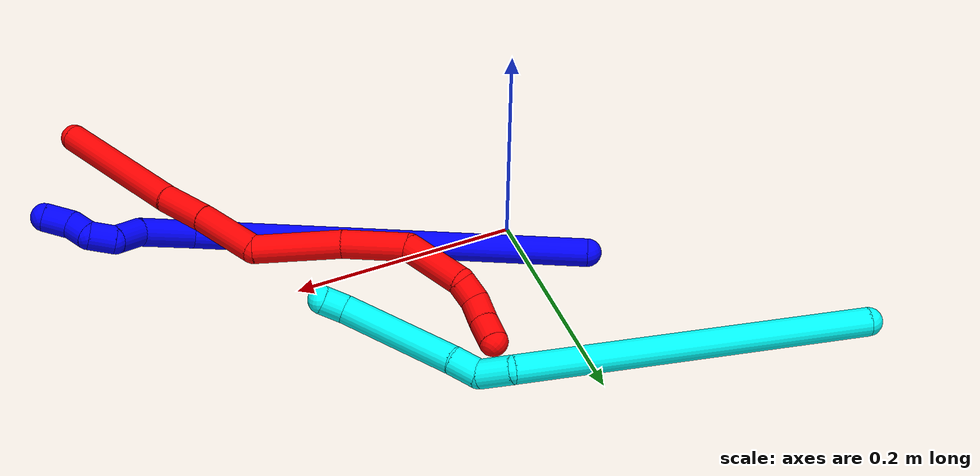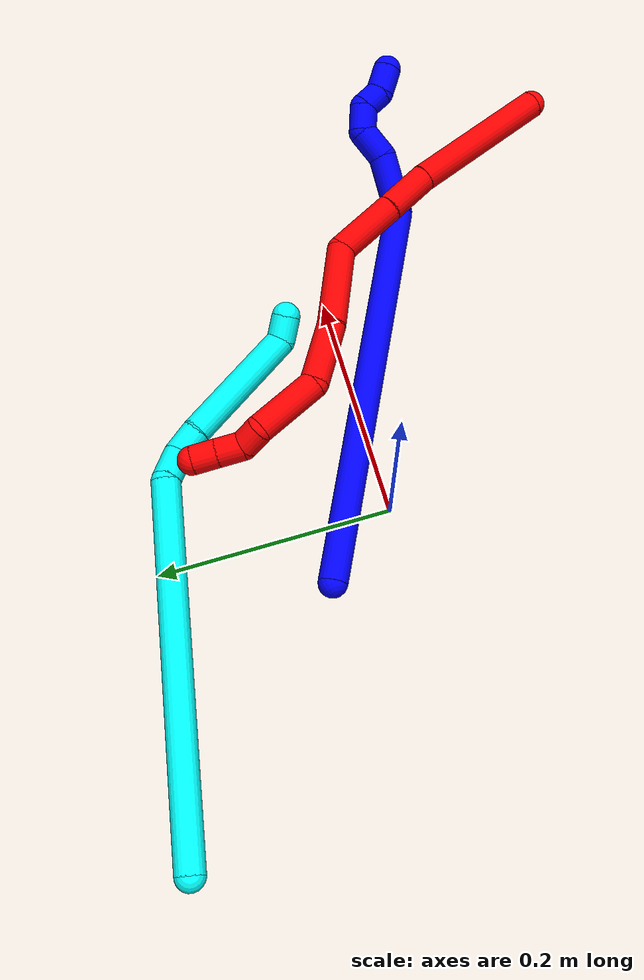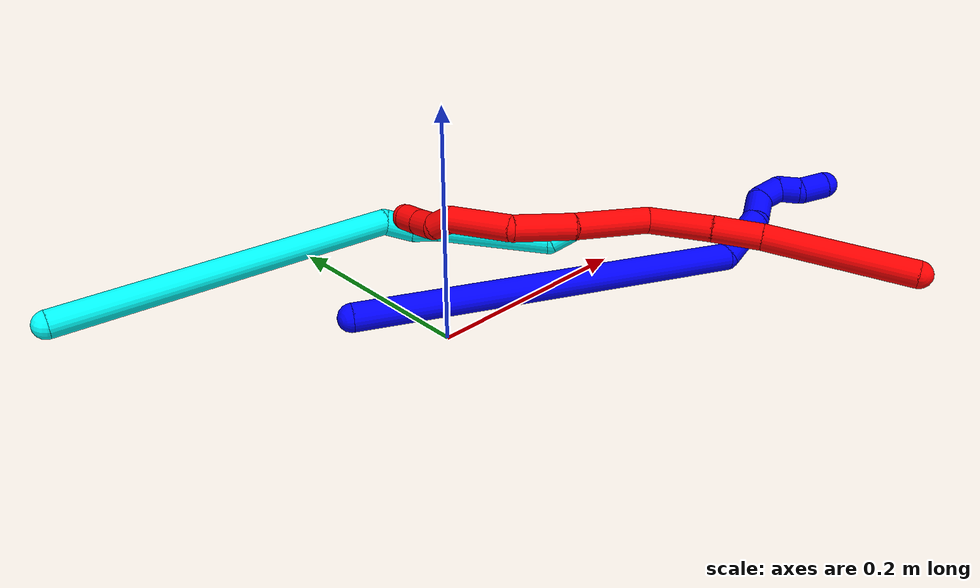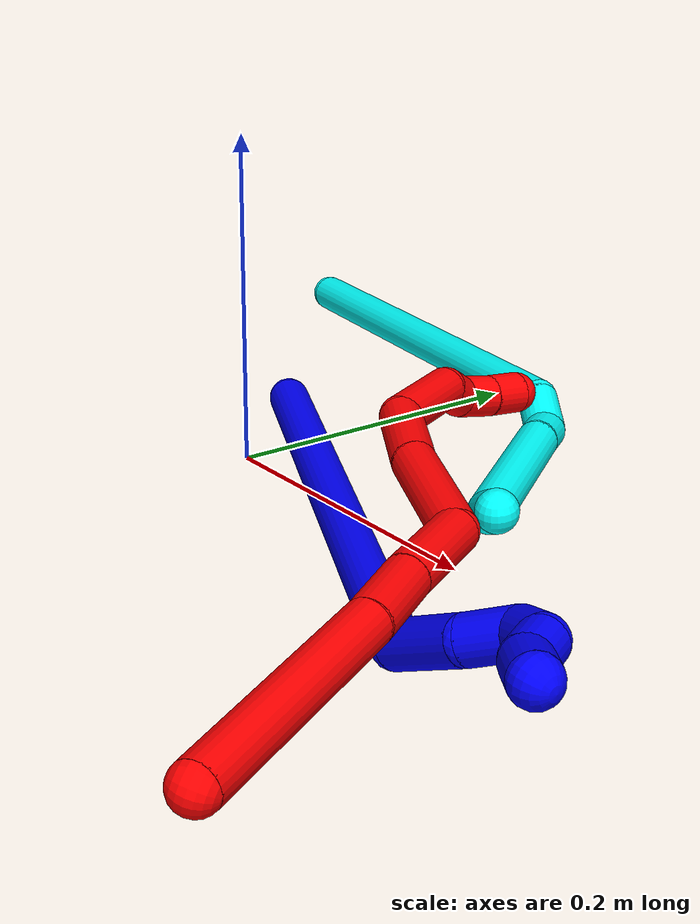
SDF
<sdf version="1.7">
 <world name="default">
  <plugin name="TubeGeneratorPlugin" filename="libtube_generator_plugin.so"/>
  <model name="photoneo_s_sensor">
   <static>1</static>
   <pose>0 0 2 1.57079 1.57079 3.14159</pose>
   <link name="link">
    <inertial><mass>0.1</mass></inertial>
    <sensor name="sensor" type="depth">
     <update_rate>30</update_rate>
     <camera>
      <horizontal_fov>1.22</horizontal_fov>
      <image><width>1920</width><height>1200</height><format>B8G8R8</format></image>
      <clip><near>0.1</near><far>4</far></clip>
      <depth_camera><output>points</output></depth_camera>
     </camera>
     <plugin name="camera_plugin" filename="libgazebo_ros_depth_camera.so">
      <baseline>0.2</baseline>
      <alwaysOn>1</alwaysOn>
      <updateRate>0.0</updateRate>
      <cameraName>camera_ir</cameraName>
      <imageTopicName>/camera/color/image_raw</imageTopicName>
      <cameraInfoTopicName>/camera/color/camera_info</cameraInfoTopicName>
      <depthImageTopicName>/camera/depth/image_raw</depthImageTopicName>
      <depthImageCameraInfoTopicName>/camera/depth/camera_info</depthImageCameraInfoTopicName>
      <pointCloudTopicName>/camera/depth/points</pointCloudTopicName>
      <frameName>fr_optical</frameName>
      <pointCloudCutoff>0.1</pointCloudCutoff>
      <pointCloudCutoffMax>2.0</pointCloudCutoffMax>
      <distortionK1>0</distortionK1>
      <distortionK2>0</distortionK2>
      <distortionK3>0</distortionK3>
      <distortionT1>0</distortionT1>
      <distortionT2>0</distortionT2>
      <CxPrime>0</CxPrime>
      <Cx>0</Cx>
      <Cy>0</Cy>
      <focalLength>0</focalLength>
      <hackBaseline>0</hackBaseline>
     </plugin>
    </sensor>
   </link>
  </model>
  <gravity>0 0 -9.8</gravity>
  <magnetic_field>6e-06 2.3e-05 -4.2e-05</magnetic_field>
  <atmosphere type="adiabatic"/>
  <physics name="default_physics" default="0" type="ode">
   <max_step_size>0.003</max_step_size>
   <real_time_factor>1</real_time_factor>
   <real_time_update_rate>1000</real_time_update_rate>
   <max_contacts>10000</max_contacts>
   <ode>
    <solver>
     <type>quick</type>
     <iters>100</iters>
     <sor>1.3</sor>
     <use_dynamic_moi_rescaling>0</use_dynamic_moi_rescaling>
    </solver>
    <constraints>
     <contact_max_correcting_vel>0</contact_max_correcting_vel>
     <contact_surface_layer>0.001</contact_surface_layer>
     <cfm>0</cfm>
     <erp>0.2</erp>
    </constraints>
   </ode>
  </physics>
  <scene><ambient>0.4 0.4 0.4 1</ambient><background>0.7 0.7 0.7 1</background><shadows>0</shadows></scene>
  <audio><device>default</device></audio>
  <spherical_coordinates>
   <surface_model>EARTH_WGS84</surface_model>
   <latitude_deg>0</latitude_deg>
   <longitude_deg>0</longitude_deg>
   <elevation>0</elevation>
   <heading_deg>0</heading_deg>
  </spherical_coordinates>
  <model name="bin">
   <static>1</static>
   <link name="bottom">
    <collision name="collision-bottom">
     <pose>0 0 -0.01 0 -0 0</pose>
     <geometry><box><size>0.8 0.6 0.02</size></box></geometry>
     <surface>
      <friction><ode><mu>100</mu><mu2>100</mu2></ode></friction>
      <contact><collide_bitmask>65535</collide_bitmask></contact>
     </surface>
    </collision>
   </link>
   <link name="west_wall">
    <collision name="collision-west_wall">
     <pose>-0.41 0 0.1 0 -0 0</pose>
     <geometry><box><size>0.02 0.6 0.2</size></box></geometry>
     <surface>
      <friction><ode><mu>100</mu><mu2>100</mu2></ode></friction>
      <contact><collide_bitmask>65535</collide_bitmask></contact>
     </surface>
    </collision>
   </link>
   <link name="east_wall">
    <collision name="collision-east_wall">
     <pose>0.41 0 0.1 0 -0 0</pose>
     <geometry><box><size>0.02 0.6 0.2</size></box></geometry>
     <surface>
      <friction><ode><mu>100</mu><mu2>100</mu2></ode></friction>
      <contact><collide_bitmask>65535</collide_bitmask></contact>
     </surface>
    </collision>
   </link>
   <link name="south_wall">
    <collision name="collision-south_wall">
     <pose>0 -0.31 0.1 0 -0 0</pose>
     <geometry><box><size>0.8 0.02 0.2</size></box></geometry>
     <surface>
      <friction><ode><mu>100</mu><mu2>100</mu2></ode></friction>
      <contact><collide_bitmask>65535</collide_bitmask></contact>
     </surface>
    </collision>
   </link>
   <link name="north_wall">
    <collision name="collision-north_wall">
     <pose>0 0.31 0.1 0 -0 0</pose>
     <geometry><box><size>0.8 0.02 0.2</size></box></geometry>
     <surface>
      <friction><ode><mu>100</mu><mu2>100</mu2></ode></friction>
      <contact><collide_bitmask>65535</collide_bitmask></contact>
     </surface>
    </collision>
   </link>
  </model>
  <model name="1">
   <static>0</static>
   <link name="1">
    <collision name="collision-cylinder-e_1_1_4">
     <pose>0.081359 -0.002686 0.155457 0.017279 0.482094 0.004248</pose>
     <geometry><cylinder><radius>0.0125</radius><length>0.35096</length></cylinder></geometry>
     <surface>
      <friction><ode><mu>1.16</mu><mu2>1.16</mu2><slip1>0</slip1><slip2>0</slip2></ode></friction>
      <contact><ode><kp>1e+06</kp><kd>1</kd><max_vel>0</max_vel><min_depth>0.001</min_depth></ode></contact>
     </surface>
    </collision>
    <visual name="visual-cylinder-e_1_1_4">
     <pose>0.081359 -0.002686 0.155457 0.017279 0.482094 0.004248</pose>
     <geometry><cylinder><radius>0.0125</radius><length>0.35096</length></cylinder></geometry>
     <material><ambient>0 0 1 1</ambient></material>
    </visual>
    <collision name="collision-cylinder-e_2_4_5">
     <pose>0.164364 -0.018341 0.333763 0.516209 0.062579 0.016525</pose>
     <geometry><cylinder><radius>0.0125</radius><length>0.052648</length></cylinder></geometry>
     <surface>
      <friction><ode><mu>1.16</mu><mu2>1.16</mu2><slip1>0</slip1><slip2>0</slip2></ode></friction>
      <contact><ode><kp>1e+06</kp><kd>1</kd><max_vel>0</max_vel><min_depth>0.001</min_depth></ode></contact>
     </surface>
    </collision>
    <visual name="visual-cylinder-e_2_4_5">
     <pose>0.164364 -0.018341 0.333763 0.516209 0.062579 0.016525</pose>
     <geometry><cylinder><radius>0.0125</radius><length>0.052648</length></cylinder></geometry>
     <material><ambient>0 0 1 1</ambient></material>
    </visual>
    <collision name="collision-cylinder-e_3_5_6">
     <pose>0.161224 -0.038071 0.368006 0.535637 -0.346643 -0.096013</pose>
     <geometry><cylinder><radius>0.0125</radius><length>0.028177</length></cylinder></geometry>
     <surface>
      <friction><ode><mu>1.16</mu><mu2>1.16</mu2><slip1>0</slip1><slip2>0</slip2></ode></friction>
      <contact><ode><kp>1e+06</kp><kd>1</kd><max_vel>0</max_vel><min_depth>0.001</min_depth></ode></contact>
     </surface>
    </collision>
    <visual name="visual-cylinder-e_3_5_6">
     <pose>0.161224 -0.038071 0.368006 0.535637 -0.346643 -0.096013</pose>
     <geometry><cylinder><radius>0.0125</radius><length>0.028177</length></cylinder></geometry>
     <material><ambient>0 0 1 1</ambient></material>
    </visual>
    <collision name="collision-cylinder-e_4_6_7">
     <pose>0.16079 -0.048603 0.38952 0.356579 0.383185 0.06988</pose>
     <geometry><cylinder><radius>0.0125</radius><length>0.023285</length></cylinder></geometry>
     <surface>
      <friction><ode><mu>1.16</mu><mu2>1.16</mu2><slip1>0</slip1><slip2>0</slip2></ode></friction>
      <contact><ode><kp>1e+06</kp><kd>1</kd><max_vel>0</max_vel><min_depth>0.001</min_depth></ode></contact>
     </surface>
    </collision>
    <visual name="visual-cylinder-e_4_6_7">
     <pose>0.16079 -0.048603 0.38952 0.356579 0.383185 0.06988</pose>
     <geometry><cylinder><radius>0.0125</radius><length>0.023285</length></cylinder></geometry>
     <material><ambient>0 0 1 1</ambient></material>
    </visual>
    <collision name="collision-cylinder-e_5_7_8">
     <pose>0.174166 -0.051803 0.40437 -0.119889 1.08495 -0.072325</pose>
     <geometry><cylinder><radius>0.0125</radius><length>0.020408</length></cylinder></geometry>
     <surface>
      <friction><ode><mu>1.16</mu><mu2>1.16</mu2><slip1>0</slip1><slip2>0</slip2></ode></friction>
      <contact><ode><kp>1e+06</kp><kd>1</kd><max_vel>0</max_vel><min_depth>0.001</min_depth></ode></contact>
     </surface>
    </collision>
    <visual name="visual-cylinder-e_5_7_8">
     <pose>0.174166 -0.051803 0.40437 -0.119889 1.08495 -0.072325</pose>
     <geometry><cylinder><radius>0.0125</radius><length>0.020408</length></cylinder></geometry>
     <material><ambient>0 0 1 1</ambient></material>
    </visual>
    <collision name="collision-cylinder-e_6_8_2">
     <pose>0.190412 -0.053301 0.41879 0.210263 0.6299 0.068729</pose>
     <geometry><cylinder><radius>0.0125</radius><length>0.024521</length></cylinder></geometry>
     <surface>
      <friction><ode><mu>1.16</mu><mu2>1.16</mu2><slip1>0</slip1><slip2>0</slip2></ode></friction>
      <contact><ode><kp>1e+06</kp><kd>1</kd><max_vel>0</max_vel><min_depth>0.001</min_depth></ode></contact>
     </surface>
    </collision>
    <visual name="visual-cylinder-e_6_8_2">
     <pose>0.190412 -0.053301 0.41879 0.210263 0.6299 0.068729</pose>
     <geometry><cylinder><radius>0.0125</radius><length>0.024521</length></cylinder></geometry>
     <material><ambient>0 0 1 1</ambient></material>
    </visual>
    <collision name="collision-sphere-2">
     <pose>0.197634 -0.055369 0.428479 0 -0 0</pose>
     <geometry><sphere><radius>0.0125</radius></sphere></geometry>
     <surface>
      <friction><ode><mu>1.16</mu><mu2>1.16</mu2><slip1>0</slip1><slip2>0</slip2></ode></friction>
      <contact><ode><kp>1e+06</kp><kd>1</kd><max_vel>0</max_vel><min_depth>0.001</min_depth></ode></contact>
     </surface>
    </collision>
    <visual name="visual-sphere-2">
     <pose>0.197634 -0.055369 0.428479 0 -0 0</pose>
     <geometry><sphere><radius>0.0125</radius></sphere></geometry>
     <material><ambient>0 0 1 1</ambient></material>
    </visual>
    <collision name="collision-sphere-4">
     <pose>0.162718 -0.005373 0.310914 0 -0 0</pose>
     <geometry><sphere><radius>0.0125</radius></sphere></geometry>
     <surface>
      <friction><ode><mu>1.16</mu><mu2>1.16</mu2><slip1>0</slip1><slip2>0</slip2></ode></friction>
      <contact><ode><kp>1e+06</kp><kd>1</kd><max_vel>0</max_vel><min_depth>0.001</min_depth></ode></contact>
     </surface>
    </collision>
    <visual name="visual-sphere-4">
     <pose>0.162718 -0.005373 0.310914 0 -0 0</pose>
     <geometry><sphere><radius>0.0125</radius></sphere></geometry>
     <material><ambient>0 0 1 1</ambient></material>
    </visual>
    <collision name="collision-sphere-1">
     <geometry><sphere><radius>0.0125</radius></sphere></geometry>
     <surface>
      <friction><ode><mu>1.16</mu><mu2>1.16</mu2><slip1>0</slip1><slip2>0</slip2></ode></friction>
      <contact><ode><kp>1e+06</kp><kd>1</kd><max_vel>0</max_vel><min_depth>0.001</min_depth></ode></contact>
     </surface>
    </collision>
    <visual name="visual-sphere-1">
     <geometry><sphere><radius>0.0125</radius></sphere></geometry>
     <material><ambient>0 0 1 1</ambient></material>
    </visual>
    <collision name="collision-sphere-8">
     <pose>0.18319 -0.051233 0.4091 0 -0 0</pose>
     <geometry><sphere><radius>0.0125</radius></sphere></geometry>
     <surface>
      <friction><ode><mu>1.16</mu><mu2>1.16</mu2><slip1>0</slip1><slip2>0</slip2></ode></friction>
      <contact><ode><kp>1e+06</kp><kd>1</kd><max_vel>0</max_vel><min_depth>0.001</min_depth></ode></contact>
     </surface>
    </collision>
    <visual name="visual-sphere-8">
     <pose>0.18319 -0.051233 0.4091 0 -0 0</pose>
     <geometry><sphere><radius>0.0125</radius></sphere></geometry>
     <material><ambient>0 0 1 1</ambient></material>
    </visual>
    <collision name="collision-sphere-5">
     <pose>0.16601 -0.031308 0.356612 0 -0 0</pose>
     <geometry><sphere><radius>0.0125</radius></sphere></geometry>
     <surface>
      <friction><ode><mu>1.16</mu><mu2>1.16</mu2><slip1>0</slip1><slip2>0</slip2></ode></friction>
      <contact><ode><kp>1e+06</kp><kd>1</kd><max_vel>0</max_vel><min_depth>0.001</min_depth></ode></contact>
     </surface>
    </collision>
    <visual name="visual-sphere-5">
     <pose>0.16601 -0.031308 0.356612 0 -0 0</pose>
     <geometry><sphere><radius>0.0125</radius></sphere></geometry>
     <material><ambient>0 0 1 1</ambient></material>
    </visual>
    <collision name="collision-sphere-6">
     <pose>0.156437 -0.044834 0.379401 0 -0 0</pose>
     <geometry><sphere><radius>0.0125</radius></sphere></geometry>
     <surface>
      <friction><ode><mu>1.16</mu><mu2>1.16</mu2><slip1>0</slip1><slip2>0</slip2></ode></friction>
      <contact><ode><kp>1e+06</kp><kd>1</kd><max_vel>0</max_vel><min_depth>0.001</min_depth></ode></contact>
     </surface>
    </collision>
    <visual name="visual-sphere-6">
     <pose>0.156437 -0.044834 0.379401 0 -0 0</pose>
     <geometry><sphere><radius>0.0125</radius></sphere></geometry>
     <material><ambient>0 0 1 1</ambient></material>
    </visual>
    <collision name="collision-sphere-7">
     <pose>0.165143 -0.052373 0.399639 0 -0 0</pose>
     <geometry><sphere><radius>0.0125</radius></sphere></geometry>
     <surface>
      <friction><ode><mu>1.16</mu><mu2>1.16</mu2><slip1>0</slip1><slip2>0</slip2></ode></friction>
      <contact><ode><kp>1e+06</kp><kd>1</kd><max_vel>0</max_vel><min_depth>0.001</min_depth></ode></contact>
     </surface>
    </collision>
    <visual name="visual-sphere-7">
     <pose>0.165143 -0.052373 0.399639 0 -0 0</pose>
     <geometry><sphere><radius>0.0125</radius></sphere></geometry>
     <material><ambient>0 0 1 1</ambient></material>
    </visual>
    <inertial>
     <pose>0.107435 -0.012954 0.220184 0 -0 0</pose>
     <mass>0.5</mass>
     <inertia>
      <ixx>0.003254</ixx>
      <ixy>0</ixy>
      <ixz>0</ixz>
      <iyy>0.003646</iyy>
      <iyz>0</iyz>
      <izz>-0.001582</izz>
     </inertia>
    </inertial>
   </link>
   <pose>-0.048758 0.064377 0.01179 -1.65928 -0.13746 -1.54101</pose>
  </model>
  <model name="2">
   <static>0</static>
   <link name="2">
    <collision name="collision-cylinder-e_1_1_4">
     <pose>-0.021078 0.062975 0.012309 -1.37777 -0.317379 0.262057</pose>
     <geometry><cylinder><radius>0.0125</radius><length>0.13508</length></cylinder></geometry>
     <surface>
      <friction><ode><mu>1.16</mu><mu2>1.16</mu2><slip1>0</slip1><slip2>0</slip2></ode></friction>
      <contact><ode><kp>1e+06</kp><kd>1</kd><max_vel>0</max_vel><min_depth>0.001</min_depth></ode></contact>
     </surface>
    </collision>
    <visual name="visual-cylinder-e_1_1_4">
     <pose>-0.021078 0.062975 0.012309 -1.37777 -0.317379 0.262057</pose>
     <geometry><cylinder><radius>0.0125</radius><length>0.13508</length></cylinder></geometry>
     <material><ambient>1 0 0 1</ambient></material>
    </visual>
    <collision name="collision-cylinder-e_2_4_5">
     <pose>-0.047967 0.147494 0.026544 -1.48162 -0.262474 0.240277</pose>
     <geometry><cylinder><radius>0.0125</radius><length>0.044793</length></cylinder></geometry>
     <surface>
      <friction><ode><mu>1.16</mu><mu2>1.16</mu2><slip1>0</slip1><slip2>0</slip2></ode></friction>
      <contact><ode><kp>1e+06</kp><kd>1</kd><max_vel>0</max_vel><min_depth>0.001</min_depth></ode></contact>
     </surface>
    </collision>
    <visual name="visual-cylinder-e_2_4_5">
     <pose>-0.047967 0.147494 0.026544 -1.48162 -0.262474 0.240277</pose>
     <geometry><cylinder><radius>0.0125</radius><length>0.044793</length></cylinder></geometry>
     <material><ambient>1 0 0 1</ambient></material>
    </visual>
    <collision name="collision-cylinder-e_3_5_6">
     <pose>-0.060366 0.198085 0.032411 -1.43594 -0.221075 0.193291</pose>
     <geometry><cylinder><radius>0.0125</radius><length>0.060089</length></cylinder></geometry>
     <surface>
      <friction><ode><mu>1.16</mu><mu2>1.16</mu2><slip1>0</slip1><slip2>0</slip2></ode></friction>
      <contact><ode><kp>1e+06</kp><kd>1</kd><max_vel>0</max_vel><min_depth>0.001</min_depth></ode></contact>
     </surface>
    </collision>
    <visual name="visual-cylinder-e_3_5_6">
     <pose>-0.060366 0.198085 0.032411 -1.43594 -0.221075 0.193291</pose>
     <geometry><cylinder><radius>0.0125</radius><length>0.060089</length></cylinder></geometry>
     <material><ambient>1 0 0 1</ambient></material>
    </visual>
    <collision name="collision-cylinder-e_4_6_7">
     <pose>-0.071425 0.259841 0.016043 -2.12646 -0.115598 0.207333</pose>
     <geometry><cylinder><radius>0.0125</radius><length>0.07752</length></cylinder></geometry>
     <surface>
      <friction><ode><mu>1.16</mu><mu2>1.16</mu2><slip1>0</slip1><slip2>0</slip2></ode></friction>
      <contact><ode><kp>1e+06</kp><kd>1</kd><max_vel>0</max_vel><min_depth>0.001</min_depth></ode></contact>
     </surface>
    </collision>
    <visual name="visual-cylinder-e_4_6_7">
     <pose>-0.071425 0.259841 0.016043 -2.12646 -0.115598 0.207333</pose>
     <geometry><cylinder><radius>0.0125</radius><length>0.07752</length></cylinder></geometry>
     <material><ambient>1 0 0 1</ambient></material>
    </visual>
    <collision name="collision-cylinder-e_5_7_8">
     <pose>-0.080205 0.318883 -0.016028 -1.99082 -0.148347 0.228146</pose>
     <geometry><cylinder><radius>0.0125</radius><length>0.058321</length></cylinder></geometry>
     <surface>
      <friction><ode><mu>1.16</mu><mu2>1.16</mu2><slip1>0</slip1><slip2>0</slip2></ode></friction>
      <contact><ode><kp>1e+06</kp><kd>1</kd><max_vel>0</max_vel><min_depth>0.001</min_depth></ode></contact>
     </surface>
    </collision>
    <visual name="visual-cylinder-e_5_7_8">
     <pose>-0.080205 0.318883 -0.016028 -1.99082 -0.148347 0.228146</pose>
     <geometry><cylinder><radius>0.0125</radius><length>0.058321</length></cylinder></geometry>
     <material><ambient>1 0 0 1</ambient></material>
    </visual>
    <collision name="collision-cylinder-e_6_8_9">
     <pose>-0.090932 0.373764 -0.022551 -1.38934 -0.21758 0.18151</pose>
     <geometry><cylinder><radius>0.0125</radius><length>0.05945</length></cylinder></geometry>
     <surface>
      <friction><ode><mu>1.16</mu><mu2>1.16</mu2><slip1>0</slip1><slip2>0</slip2></ode></friction>
      <contact><ode><kp>1e+06</kp><kd>1</kd><max_vel>0</max_vel><min_depth>0.001</min_depth></ode></contact>
     </surface>
    </collision>
    <visual name="visual-cylinder-e_6_8_9">
     <pose>-0.090932 0.373764 -0.022551 -1.38934 -0.21758 0.18151</pose>
     <geometry><cylinder><radius>0.0125</radius><length>0.05945</length></cylinder></geometry>
     <material><ambient>1 0 0 1</ambient></material>
    </visual>
    <collision name="collision-cylinder-e_7_9_10">
     <pose>-0.094309 0.411306 -0.013926 -1.21063 0.30636 -0.212859</pose>
     <geometry><cylinder><radius>0.0125</radius><length>0.02016</length></cylinder></geometry>
     <surface>
      <friction><ode><mu>1.16</mu><mu2>1.16</mu2><slip1>0</slip1><slip2>0</slip2></ode></friction>
      <contact><ode><kp>1e+06</kp><kd>1</kd><max_vel>0</max_vel><min_depth>0.001</min_depth></ode></contact>
     </surface>
    </collision>
    <visual name="visual-cylinder-e_7_9_10">
     <pose>-0.094309 0.411306 -0.013926 -1.21063 0.30636 -0.212859</pose>
     <geometry><cylinder><radius>0.0125</radius><length>0.02016</length></cylinder></geometry>
     <material><ambient>1 0 0 1</ambient></material>
    </visual>
    <collision name="collision-cylinder-e_8_10_11">
     <pose>-0.092868 0.428909 -0.003209 -0.865494 -0.140546 0.065009</pose>
     <geometry><cylinder><radius>0.0125</radius><length>0.022837</length></cylinder></geometry>
     <surface>
      <friction><ode><mu>1.16</mu><mu2>1.16</mu2><slip1>0</slip1><slip2>0</slip2></ode></friction>
      <contact><ode><kp>1e+06</kp><kd>1</kd><max_vel>0</max_vel><min_depth>0.001</min_depth></ode></contact>
     </surface>
    </collision>
    <visual name="visual-cylinder-e_8_10_11">
     <pose>-0.092868 0.428909 -0.003209 -0.865494 -0.140546 0.065009</pose>
     <geometry><cylinder><radius>0.0125</radius><length>0.022837</length></cylinder></geometry>
     <material><ambient>1 0 0 1</ambient></material>
    </visual>
    <collision name="collision-cylinder-e_9_11_2">
     <pose>-0.096757 0.445871 0.010696 -0.903885 -0.212081 0.103251</pose>
     <geometry><cylinder><radius>0.0125</radius><length>0.021748</length></cylinder></geometry>
     <surface>
      <friction><ode><mu>1.16</mu><mu2>1.16</mu2><slip1>0</slip1><slip2>0</slip2></ode></friction>
      <contact><ode><kp>1e+06</kp><kd>1</kd><max_vel>0</max_vel><min_depth>0.001</min_depth></ode></contact>
     </surface>
    </collision>
    <visual name="visual-cylinder-e_9_11_2">
     <pose>-0.096757 0.445871 0.010696 -0.903885 -0.212081 0.103251</pose>
     <geometry><cylinder><radius>0.0125</radius><length>0.021748</length></cylinder></geometry>
     <material><ambient>1 0 0 1</ambient></material>
    </visual>
    <collision name="collision-sphere-2">
     <pose>-0.099046 0.454223 0.017271 0 -0 0</pose>
     <geometry><sphere><radius>0.0125</radius></sphere></geometry>
     <surface>
      <friction><ode><mu>1.16</mu><mu2>1.16</mu2><slip1>0</slip1><slip2>0</slip2></ode></friction>
      <contact><ode><kp>1e+06</kp><kd>1</kd><max_vel>0</max_vel><min_depth>0.001</min_depth></ode></contact>
     </surface>
    </collision>
    <visual name="visual-sphere-2">
     <pose>-0.099046 0.454223 0.017271 0 -0 0</pose>
     <geometry><sphere><radius>0.0125</radius></sphere></geometry>
     <material><ambient>1 0 0 1</ambient></material>
    </visual>
    <collision name="collision-sphere-11">
     <pose>-0.094468 0.437518 0.00412 0 -0 0</pose>
     <geometry><sphere><radius>0.0125</radius></sphere></geometry>
     <surface>
      <friction><ode><mu>1.16</mu><mu2>1.16</mu2><slip1>0</slip1><slip2>0</slip2></ode></friction>
      <contact><ode><kp>1e+06</kp><kd>1</kd><max_vel>0</max_vel><min_depth>0.001</min_depth></ode></contact>
     </surface>
    </collision>
    <visual name="visual-sphere-11">
     <pose>-0.094468 0.437518 0.00412 0 -0 0</pose>
     <geometry><sphere><radius>0.0125</radius></sphere></geometry>
     <material><ambient>1 0 0 1</ambient></material>
    </visual>
    <collision name="collision-sphere-10">
     <pose>-0.091269 0.4203 -0.010539 0 -0 0</pose>
     <geometry><sphere><radius>0.0125</radius></sphere></geometry>
     <surface>
      <friction><ode><mu>1.16</mu><mu2>1.16</mu2><slip1>0</slip1><slip2>0</slip2></ode></friction>
      <contact><ode><kp>1e+06</kp><kd>1</kd><max_vel>0</max_vel><min_depth>0.001</min_depth></ode></contact>
     </surface>
    </collision>
    <visual name="visual-sphere-10">
     <pose>-0.091269 0.4203 -0.010539 0 -0 0</pose>
     <geometry><sphere><radius>0.0125</radius></sphere></geometry>
     <material><ambient>1 0 0 1</ambient></material>
    </visual>
    <collision name="collision-sphere-9">
     <pose>-0.097349 0.402312 -0.017313 0 -0 0</pose>
     <geometry><sphere><radius>0.0125</radius></sphere></geometry>
     <surface>
      <friction><ode><mu>1.16</mu><mu2>1.16</mu2><slip1>0</slip1><slip2>0</slip2></ode></friction>
      <contact><ode><kp>1e+06</kp><kd>1</kd><max_vel>0</max_vel><min_depth>0.001</min_depth></ode></contact>
     </surface>
    </collision>
    <visual name="visual-sphere-9">
     <pose>-0.097349 0.402312 -0.017313 0 -0 0</pose>
     <geometry><sphere><radius>0.0125</radius></sphere></geometry>
     <material><ambient>1 0 0 1</ambient></material>
    </visual>
    <collision name="collision-sphere-4">
     <pose>-0.042155 0.12595 0.024618 0 -0 0</pose>
     <geometry><sphere><radius>0.0125</radius></sphere></geometry>
     <surface>
      <friction><ode><mu>1.16</mu><mu2>1.16</mu2><slip1>0</slip1><slip2>0</slip2></ode></friction>
      <contact><ode><kp>1e+06</kp><kd>1</kd><max_vel>0</max_vel><min_depth>0.001</min_depth></ode></contact>
     </surface>
    </collision>
    <visual name="visual-sphere-4">
     <pose>-0.042155 0.12595 0.024618 0 -0 0</pose>
     <geometry><sphere><radius>0.0125</radius></sphere></geometry>
     <material><ambient>1 0 0 1</ambient></material>
    </visual>
    <collision name="collision-sphere-1">
     <geometry><sphere><radius>0.0125</radius></sphere></geometry>
     <surface>
      <friction><ode><mu>1.16</mu><mu2>1.16</mu2><slip1>0</slip1><slip2>0</slip2></ode></friction>
      <contact><ode><kp>1e+06</kp><kd>1</kd><max_vel>0</max_vel><min_depth>0.001</min_depth></ode></contact>
     </surface>
    </collision>
    <visual name="visual-sphere-1">
     <geometry><sphere><radius>0.0125</radius></sphere></geometry>
     <material><ambient>1 0 0 1</ambient></material>
    </visual>
    <collision name="collision-sphere-8">
     <pose>-0.084515 0.345217 -0.027788 0 -0 0</pose>
     <geometry><sphere><radius>0.0125</radius></sphere></geometry>
     <surface>
      <friction><ode><mu>1.16</mu><mu2>1.16</mu2><slip1>0</slip1><slip2>0</slip2></ode></friction>
      <contact><ode><kp>1e+06</kp><kd>1</kd><max_vel>0</max_vel><min_depth>0.001</min_depth></ode></contact>
     </surface>
    </collision>
    <visual name="visual-sphere-8">
     <pose>-0.084515 0.345217 -0.027788 0 -0 0</pose>
     <geometry><sphere><radius>0.0125</radius></sphere></geometry>
     <material><ambient>1 0 0 1</ambient></material>
    </visual>
    <collision name="collision-sphere-5">
     <pose>-0.053778 0.169038 0.02847 0 -0 0</pose>
     <geometry><sphere><radius>0.0125</radius></sphere></geometry>
     <surface>
      <friction><ode><mu>1.16</mu><mu2>1.16</mu2><slip1>0</slip1><slip2>0</slip2></ode></friction>
      <contact><ode><kp>1e+06</kp><kd>1</kd><max_vel>0</max_vel><min_depth>0.001</min_depth></ode></contact>
     </surface>
    </collision>
    <visual name="visual-sphere-5">
     <pose>-0.053778 0.169038 0.02847 0 -0 0</pose>
     <geometry><sphere><radius>0.0125</radius></sphere></geometry>
     <material><ambient>1 0 0 1</ambient></material>
    </visual>
    <collision name="collision-sphere-6">
     <pose>-0.066954 0.227132 0.036353 0 -0 0</pose>
     <geometry><sphere><radius>0.0125</radius></sphere></geometry>
     <surface>
      <friction><ode><mu>1.16</mu><mu2>1.16</mu2><slip1>0</slip1><slip2>0</slip2></ode></friction>
      <contact><ode><kp>1e+06</kp><kd>1</kd><max_vel>0</max_vel><min_depth>0.001</min_depth></ode></contact>
     </surface>
    </collision>
    <visual name="visual-sphere-6">
     <pose>-0.066954 0.227132 0.036353 0 -0 0</pose>
     <geometry><sphere><radius>0.0125</radius></sphere></geometry>
     <material><ambient>1 0 0 1</ambient></material>
    </visual>
    <collision name="collision-sphere-7">
     <pose>-0.075895 0.292549 -0.004267 0 -0 0</pose>
     <geometry><sphere><radius>0.0125</radius></sphere></geometry>
     <surface>
      <friction><ode><mu>1.16</mu><mu2>1.16</mu2><slip1>0</slip1><slip2>0</slip2></ode></friction>
      <contact><ode><kp>1e+06</kp><kd>1</kd><max_vel>0</max_vel><min_depth>0.001</min_depth></ode></contact>
     </surface>
    </collision>
    <visual name="visual-sphere-7">
     <pose>-0.075895 0.292549 -0.004267 0 -0 0</pose>
     <geometry><sphere><radius>0.0125</radius></sphere></geometry>
     <material><ambient>1 0 0 1</ambient></material>
    </visual>
    <inertial>
     <pose>-0.06074 0.231523 0.007292 0 -0 0</pose>
     <mass>0.5</mass>
     <inertia>
      <ixx>0.000371</ixx>
      <ixy>0</ixy>
      <ixz>0</ixz>
      <iyy>0.00015</iyy>
      <iyz>0</iyz>
      <izz>-0.000214</izz>
     </inertia>
    </inertial>
   </link>
   <pose>0.33414 -0.240307 0.026372 -2.52151 1.25419 -1.87146</pose>
  </model>
  <model name="3">
   <static>0</static>
   <link name="3">
    <collision name="collision-cylinder-e_1_1_4">
     <pose>0.068021 -0.137705 -0.025259 1.75221 0.452266 0.538791</pose>
     <geometry><cylinder><radius>0.0125</radius><length>0.311305</length></cylinder></geometry>
     <surface>
      <friction><ode><mu>1.16</mu><mu2>1.16</mu2><slip1>0</slip1><slip2>0</slip2></ode></friction>
      <contact><ode><kp>1e+06</kp><kd>1</kd><max_vel>0</max_vel><min_depth>0.001</min_depth></ode></contact>
     </surface>
    </collision>
    <visual name="visual-cylinder-e_1_1_4">
     <pose>0.068021 -0.137705 -0.025259 1.75221 0.452266 0.538791</pose>
     <geometry><cylinder><radius>0.0125</radius><length>0.311305</length></cylinder></geometry>
     <material><ambient>0.003922 1 0.996078 1</ambient></material>
    </visual>
    <collision name="collision-cylinder-e_2_4_5">
     <pose>0.147362 -0.285201 -0.047358 1.25858 0.833154 0.623271</pose>
     <geometry><cylinder><radius>0.0125</radius><length>0.030593</length></cylinder></geometry>
     <surface>
      <friction><ode><mu>1.16</mu><mu2>1.16</mu2><slip1>0</slip1><slip2>0</slip2></ode></friction>
      <contact><ode><kp>1e+06</kp><kd>1</kd><max_vel>0</max_vel><min_depth>0.001</min_depth></ode></contact>
     </surface>
    </collision>
    <visual name="visual-cylinder-e_2_4_5">
     <pose>0.147362 -0.285201 -0.047358 1.25858 0.833154 0.623271</pose>
     <geometry><cylinder><radius>0.0125</radius><length>0.030593</length></cylinder></geometry>
     <material><ambient>0.003922 1 0.996078 1</ambient></material>
    </visual>
    <collision name="collision-cylinder-e_3_5_6">
     <pose>0.170189 -0.299261 -0.04777 2.26749 1.12023 1.86103</pose>
     <geometry><cylinder><radius>0.0125</radius><length>0.025565</length></cylinder></geometry>
     <surface>
      <friction><ode><mu>1.16</mu><mu2>1.16</mu2><slip1>0</slip1><slip2>0</slip2></ode></friction>
      <contact><ode><kp>1e+06</kp><kd>1</kd><max_vel>0</max_vel><min_depth>0.001</min_depth></ode></contact>
     </surface>
    </collision>
    <visual name="visual-cylinder-e_3_5_6">
     <pose>0.170189 -0.299261 -0.04777 2.26749 1.12023 1.86103</pose>
     <geometry><cylinder><radius>0.0125</radius><length>0.025565</length></cylinder></geometry>
     <material><ambient>0.003922 1 0.996078 1</ambient></material>
    </visual>
    <collision name="collision-cylinder-e_4_6_7">
     <pose>0.233583 -0.320296 -0.059616 2.02921 1.22496 1.69291</pose>
     <geometry><cylinder><radius>0.0125</radius><length>0.110306</length></cylinder></geometry>
     <surface>
      <friction><ode><mu>1.16</mu><mu2>1.16</mu2><slip1>0</slip1><slip2>0</slip2></ode></friction>
      <contact><ode><kp>1e+06</kp><kd>1</kd><max_vel>0</max_vel><min_depth>0.001</min_depth></ode></contact>
     </surface>
    </collision>
    <visual name="visual-cylinder-e_4_6_7">
     <pose>0.233583 -0.320296 -0.059616 2.02921 1.22496 1.69291</pose>
     <geometry><cylinder><radius>0.0125</radius><length>0.110306</length></cylinder></geometry>
     <material><ambient>0.003922 1 0.996078 1</ambient></material>
    </visual>
    <collision name="collision-cylinder-e_5_7_2">
     <pose>0.291904 -0.343736 -0.074023 2.3141 0.617249 1.25602</pose>
     <geometry><cylinder><radius>0.0125</radius><length>0.022232</length></cylinder></geometry>
     <surface>
      <friction><ode><mu>1.16</mu><mu2>1.16</mu2><slip1>0</slip1><slip2>0</slip2></ode></friction>
      <contact><ode><kp>1e+06</kp><kd>1</kd><max_vel>0</max_vel><min_depth>0.001</min_depth></ode></contact>
     </surface>
    </collision>
    <visual name="visual-cylinder-e_5_7_2">
     <pose>0.291904 -0.343736 -0.074023 2.3141 0.617249 1.25602</pose>
     <geometry><cylinder><radius>0.0125</radius><length>0.022232</length></cylinder></geometry>
     <material><ambient>0.003922 1 0.996078 1</ambient></material>
    </visual>
    <collision name="collision-sphere-2">
     <pose>0.298338 -0.350409 -0.080158 0 -0 0</pose>
     <geometry><sphere><radius>0.0125</radius></sphere></geometry>
     <surface>
      <friction><ode><mu>1.16</mu><mu2>1.16</mu2><slip1>0</slip1><slip2>0</slip2></ode></friction>
      <contact><ode><kp>1e+06</kp><kd>1</kd><max_vel>0</max_vel><min_depth>0.001</min_depth></ode></contact>
     </surface>
    </collision>
    <visual name="visual-sphere-2">
     <pose>0.298338 -0.350409 -0.080158 0 -0 0</pose>
     <geometry><sphere><radius>0.0125</radius></sphere></geometry>
     <material><ambient>0.003922 1 0.996078 1</ambient></material>
    </visual>
    <collision name="collision-sphere-7">
     <pose>0.28547 -0.337062 -0.067889 0 -0 0</pose>
     <geometry><sphere><radius>0.0125</radius></sphere></geometry>
     <surface>
      <friction><ode><mu>1.16</mu><mu2>1.16</mu2><slip1>0</slip1><slip2>0</slip2></ode></friction>
      <contact><ode><kp>1e+06</kp><kd>1</kd><max_vel>0</max_vel><min_depth>0.001</min_depth></ode></contact>
     </surface>
    </collision>
    <visual name="visual-sphere-7">
     <pose>0.28547 -0.337062 -0.067889 0 -0 0</pose>
     <geometry><sphere><radius>0.0125</radius></sphere></geometry>
     <material><ambient>0.003922 1 0.996078 1</ambient></material>
    </visual>
    <collision name="collision-sphere-6">
     <pose>0.181696 -0.30353 -0.051342 0 -0 0</pose>
     <geometry><sphere><radius>0.0125</radius></sphere></geometry>
     <surface>
      <friction><ode><mu>1.16</mu><mu2>1.16</mu2><slip1>0</slip1><slip2>0</slip2></ode></friction>
      <contact><ode><kp>1e+06</kp><kd>1</kd><max_vel>0</max_vel><min_depth>0.001</min_depth></ode></contact>
     </surface>
    </collision>
    <visual name="visual-sphere-6">
     <pose>0.181696 -0.30353 -0.051342 0 -0 0</pose>
     <geometry><sphere><radius>0.0125</radius></sphere></geometry>
     <material><ambient>0.003922 1 0.996078 1</ambient></material>
    </visual>
    <collision name="collision-sphere-5">
     <pose>0.158682 -0.294991 -0.044198 0 -0 0</pose>
     <geometry><sphere><radius>0.0125</radius></sphere></geometry>
     <surface>
      <friction><ode><mu>1.16</mu><mu2>1.16</mu2><slip1>0</slip1><slip2>0</slip2></ode></friction>
      <contact><ode><kp>1e+06</kp><kd>1</kd><max_vel>0</max_vel><min_depth>0.001</min_depth></ode></contact>
     </surface>
    </collision>
    <visual name="visual-sphere-5">
     <pose>0.158682 -0.294991 -0.044198 0 -0 0</pose>
     <geometry><sphere><radius>0.0125</radius></sphere></geometry>
     <material><ambient>0.003922 1 0.996078 1</ambient></material>
    </visual>
    <collision name="collision-sphere-1">
     <geometry><sphere><radius>0.0125</radius></sphere></geometry>
     <surface>
      <friction><ode><mu>1.16</mu><mu2>1.16</mu2><slip1>0</slip1><slip2>0</slip2></ode></friction>
      <contact><ode><kp>1e+06</kp><kd>1</kd><max_vel>0</max_vel><min_depth>0.001</min_depth></ode></contact>
     </surface>
    </collision>
    <visual name="visual-sphere-1">
     <geometry><sphere><radius>0.0125</radius></sphere></geometry>
     <material><ambient>0.003922 1 0.996078 1</ambient></material>
    </visual>
    <collision name="collision-sphere-4">
     <pose>0.136041 -0.275411 -0.050518 0 -0 0</pose>
     <geometry><sphere><radius>0.0125</radius></sphere></geometry>
     <surface>
      <friction><ode><mu>1.16</mu><mu2>1.16</mu2><slip1>0</slip1><slip2>0</slip2></ode></friction>
      <contact><ode><kp>1e+06</kp><kd>1</kd><max_vel>0</max_vel><min_depth>0.001</min_depth></ode></contact>
     </surface>
    </collision>
    <visual name="visual-sphere-4">
     <pose>0.136041 -0.275411 -0.050518 0 -0 0</pose>
     <geometry><sphere><radius>0.0125</radius></sphere></geometry>
     <material><ambient>0.003922 1 0.996078 1</ambient></material>
    </visual>
    <inertial>
     <pose>0.124579 -0.204433 -0.03751 0 -0 0</pose>
     <mass>0.5</mass>
     <inertia>
      <ixx>0.00318</ixx>
      <ixy>0</ixy>
      <ixz>0</ixz>
      <iyy>0.001456</iyy>
      <iyz>0</iyz>
      <izz>0.001049</izz>
     </inertia>
    </inertial>
   </link>
   <pose>-0.234889 0.230728 0.011499 3.08053 0.1631 -1.29079</pose>
  </model>
 </world>
</sdf>
